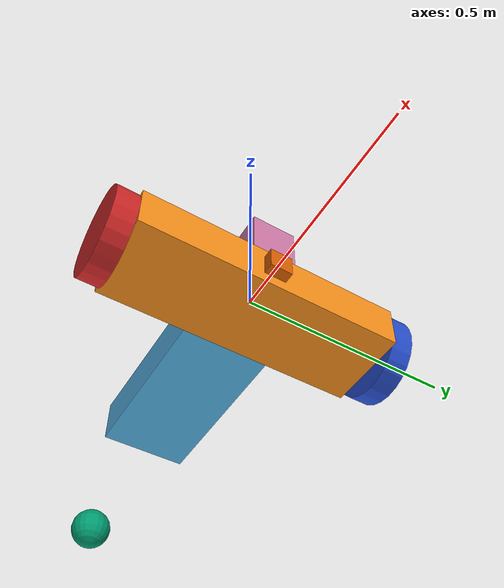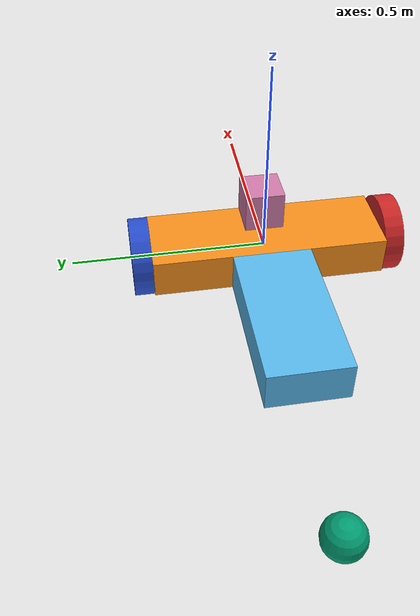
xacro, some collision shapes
<?xml version="1.0"?>

<robot name="my_robot" xmlns:xacro="http://www.ros.org/wiki/xacro">

  <xacro:include filename="$(find my_robot)/urdf/my_robot.gazebo" />

  <link name="robot_footprint"></link>

  <joint name="robot_footprint_joint" type="fixed">
    <origin xyz="0 0 0" rpy="0 0 0" />
    <parent link="robot_footprint" />
    <child link="chassis" />
  </joint>

  <link name="chassis">
    <pose>0 0 0.1 0 0 0</pose>

    <inertial>
      <mass value="15.0" />
      <origin xyz="0 0 0" rpy="0 0 0" />
      <inertia
        ixx="0.1" ixy="0" ixz="0"
        iyy="0.1" iyz="0"
        izz="0.1"
      />
    </inertial>

    <collision name="chassis_front_collision">
      <origin xyz="0 0 0" rpy="0 0 0" />
      <geometry>
        <box size=".2 .6 .1" />
      </geometry>
    </collision>

    <visual name="chassis_front_visual">
      <origin xyz="0 0 0" rpy="0 0 0" />
      <geometry>
        <box size=".2 .6 .1" />
      </geometry>
      <material name="orange"/>
    </visual>

    <collision name="chassis_back_collision">
      <origin xyz="-.3 0 0" rpy="0 0 0" />
      <geometry>
        <box size=".4 .2 .1" />
      </geometry>
    </collision>

    <visual name="chassis_back_visual">
      <origin xyz="-.3 0 0" rpy="0 0 0" />
      <geometry>
        <box size=".4 .2 .1" />
      </geometry>
    </visual>

  </link>

  <link name="back_caster">

    <inertial>
      <mass value="10.0" />
      <origin xyz="0 0 0" rpy="0 0 0" />
      <inertia
        ixx="0.1" ixy="0" ixz="0"
        iyy="0.1" iyz="0"
        izz="0.1"
      />
    </inertial>

    <collision name="back_caster_collision">
      <origin xyz="-0.4 0 -0.05" rpy="0 0 0" />
      <geometry>
        <sphere radius="0.05" />
      </geometry>
    </collision>

    <visual name="back_caster_visual">
      <origin xyz="-0.4 0 -0.05" rpy="0 0 0" />
      <geometry>
        <sphere radius="0.05" />
      </geometry>
    </visual>

  </link>

  <joint type="fixed" name="back_caster_hinge">
    <origin xyz="-0.4 0 -0.05" rpy="0 0 0" />
    <child link="back_caster" />
    <parent link="chassis" />
  </joint>

  <link name="left_wheel">

    <inertial>
      <mass value="5.0" />
      <origin xyz="0 0 0" rpy="0 1.5707 1.5707" />
      <inertia
        ixx="0.1" ixy="0" ixz="0"
        iyy="0.1" iyz="0"
        izz="0.1"
      />
    </inertial>

    <collision>
      <origin xyz="0 0 0" rpy="0 1.5707 1.5707" />
      <geometry>
        <cylinder radius="0.1" length="0.05" />
      </geometry>
    </collision>

    <visual>
      <origin xyz="0 0 0" rpy="0 1.5707 1.5707" />
      <geometry>
        <cylinder radius="0.1" length="0.05" />
      </geometry>
    </visual>

  </link>

  <link name="right_wheel">

    <inertial>
      <mass value="5.0" />
      <origin xyz="0 0 0" rpy="0 1.5707 1.5707" />
      <inertia
        ixx="0.1" ixy="0" ixz="0"
        iyy="0.1" iyz="0"
        izz="0.1"
      />
    </inertial>

    <collision>
      <origin xyz="0 0 0" rpy="0 1.5707 1.5707" />
      <geometry>
        <cylinder radius="0.1" length="0.05" />
      </geometry>
    </collision>

    <visual>
      <origin xyz="0 0 0" rpy="0 1.5707 1.5707" />
      <geometry>
        <cylinder radius="0.1" length="0.05" />
      </geometry>
    </visual>

  </link>

  <gazebo reference="left_wheel">
    <material>Gazebo/Blue</material>
  </gazebo>

  <gazebo reference="right_wheel">
    <material>Gazebo/Red</material>
  </gazebo>

  <joint type="continuous" name="left_wheel_hinge">
    <origin xyz="0 0.325 0" rpy="0 0 0" />
    <child link="left_wheel" />
    <parent link="chassis" />
    <axis xyz="0 1 0" rpy="0 0 0" />
    <limit effort="10000" velocity="1000" />
    <dynamics damping="1.0" friction="1.0" />
  </joint>

  <joint type="continuous" name="right_wheel_hinge">
    <origin xyz="0 -0.325 0" rpy="0 0 0" />
    <child link="right_wheel" />
    <parent link="chassis" />
    <axis xyz="0 1 0" rpy="0 0 0" />
    <limit effort="10000" velocity="1000" />
    <dynamics damping="1.0" friction="1.0" />
  </joint>

  <link name="camera">

    <box_inertia x="0.05" y="0.05" z="0.05" m="0.1" />

    <collision>
      <origin xyz="0 0 0" rpy="0 0 0" />
      <geometry>
        <box size="0.05 0.05 0.05" />
      </geometry>
    </collision>

    <visual>
      <origin xyz="0 0 0" rpy="0 0 0" />
      <geometry>
        <box size="0.05 0.05 0.05" />
      </geometry>
    </visual>

  </link>

  <joint type="fixed" name="camera_joint">
    <origin xyz="0.1 0 0" rpy="0 0 0" />
    <parent link="chassis" />
    <child link="camera" />
  </joint>

  <link name="hokuyo">

    <inertial>
      <mass value="1e-5" />
      <inertia
        ixx="1e-6" ixy="0" ixz="0"
        iyy="1e-6" iyz="0"
        izz="1e-6"
      />
    </inertial>

    <collision>
      <origin xyz="0 0 0" rpy="0 0 0" />
      <geometry>
        <box size="0.1 0.1 0.1" />
      </geometry>
    </collision>

    <visual>
      <origin xyz="0 0 0" rpy="0 0 0" />
      <geometry>
        <mesh filename="package://my_robot/meshes/hokuyo.dae" />
      </geometry>
    </visual>

  </link>

  <joint name="hokuyo" type="fixed">
    <origin xyz="0.05 0 0.1" rpy="0 0 0"/>
    <parent link="chassis" />
    <child link="hokuyo" />
  </joint>

</robot>
